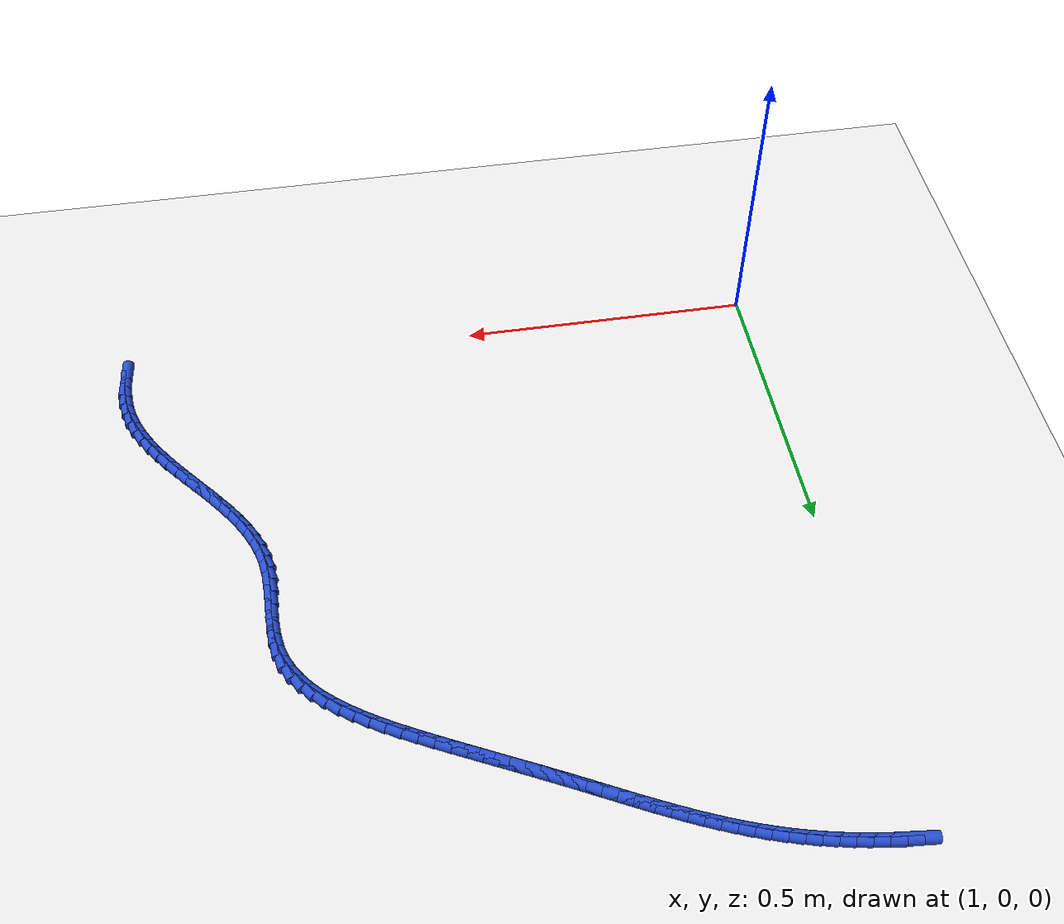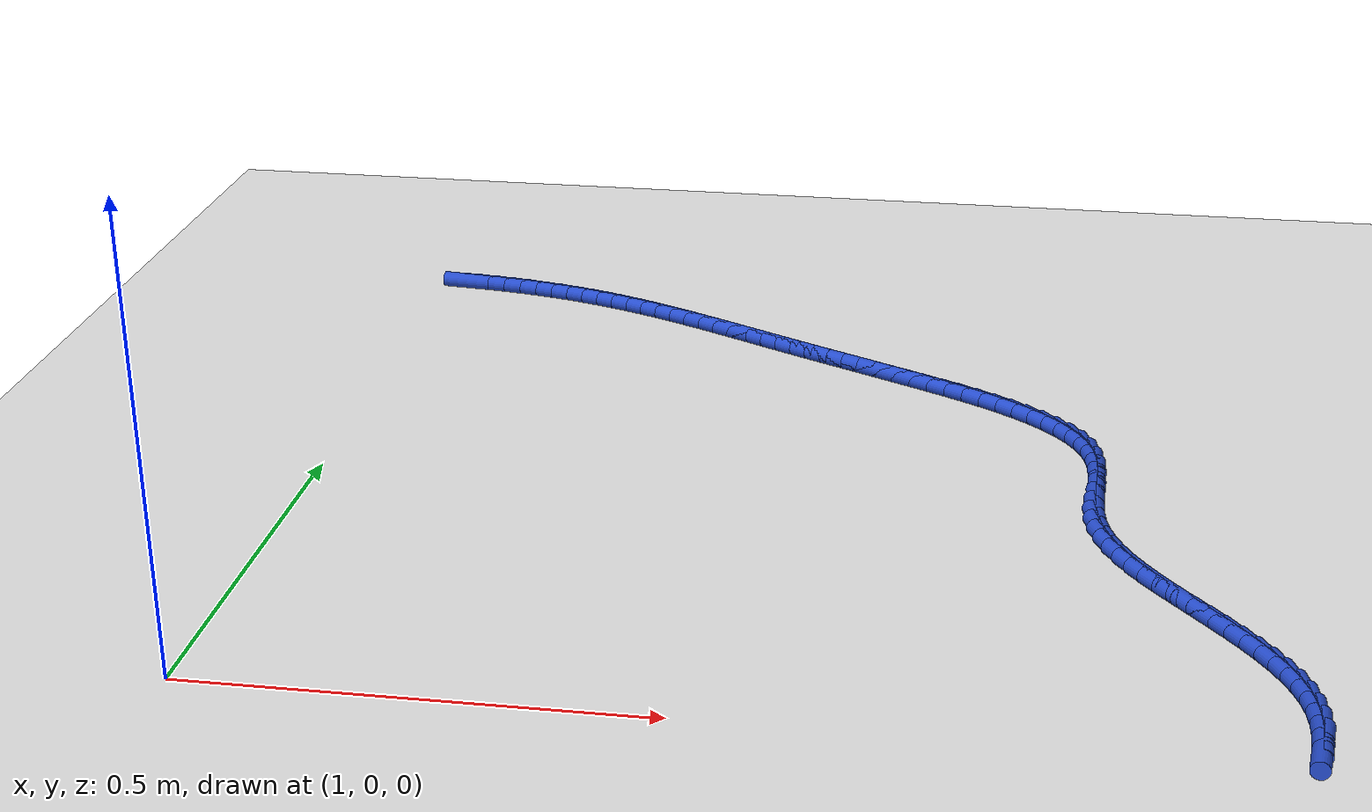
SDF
<sdf version="1.6">
 <world name="default">
  <model name="ground_plane">
   <static>1</static>
   <link name="link">
    <collision name="collision">
     <geometry><plane><normal>0 0 1</normal><size>100 100</size></plane></geometry>
     <surface><friction><ode><mu>100</mu><mu2>50</mu2></ode></friction></surface>
    </collision>
    <visual name="visual">
     <cast_shadows>0</cast_shadows>
     <geometry><plane><normal>0 0 1</normal><size>100 100</size></plane></geometry>
     <material>
      <script><uri>file://media/materials/scripts/gazebo.material</uri><name>Gazebo/WhiteGlow</name></script>
     </material>
    </visual>
   </link>
  </model>
  <model name="line">
   <link name="link_69">
    <pose>1.030614867854801 1.0853525549357117 0.01 0 1.57 -0.10308039634264075</pose>
    <collision name="collision">
     <geometry><cylinder><radius>0.01</radius><length>0.08</length></cylinder></geometry>
    </collision>
    <visual name="visual">
     <material>
      <script><name>Gazebo/Blue</name><uri>file://media/materials/scripts/gazebo.material</uri></script>
     </material>
     <geometry><cylinder><radius>0.01</radius><length>0.08</length></cylinder></geometry>
    </visual>
   </link>
   <link name="link_70">
    <pose>1.055228164593601 1.0828063819798337 0.01 0 1.57 -0.13067224404088587</pose>
    <collision name="collision">
     <geometry><cylinder><radius>0.01</radius><length>0.08</length></cylinder></geometry>
    </collision>
    <visual name="visual">
     <material>
      <script><name>Gazebo/Blue</name><uri>file://media/materials/scripts/gazebo.material</uri></script>
     </material>
     <geometry><cylinder><radius>0.01</radius><length>0.08</length></cylinder></geometry>
    </visual>
   </link>
   <link name="link_71">
    <pose>1.0794861066105343 1.0796183762552884 0.01 0 1.57 -0.1573822876860002</pose>
    <collision name="collision">
     <geometry><cylinder><radius>0.01</radius><length>0.08</length></cylinder></geometry>
    </collision>
    <visual name="visual">
     <material>
      <script><name>Gazebo/Blue</name><uri>file://media/materials/scripts/gazebo.material</uri></script>
     </material>
     <geometry><cylinder><radius>0.01</radius><length>0.08</length></cylinder></geometry>
    </visual>
   </link>
   <link name="link_72">
    <pose>1.1033642201056064 1.0758290461378075 0.01 0 1.57 -0.1848736981832675</pose>
    <collision name="collision">
     <geometry><cylinder><radius>0.01</radius><length>0.08</length></cylinder></geometry>
    </collision>
    <visual name="visual">
     <material>
      <script><name>Gazebo/Blue</name><uri>file://media/materials/scripts/gazebo.material</uri></script>
     </material>
     <geometry><cylinder><radius>0.01</radius><length>0.08</length></cylinder></geometry>
    </visual>
   </link>
   <link name="link_73">
    <pose>1.1268936689105709 1.0714288246489243 0.01 0 1.57 -0.2130229744525341</pose>
    <collision name="collision">
     <geometry><cylinder><radius>0.01</radius><length>0.08</length></cylinder></geometry>
    </collision>
    <visual name="visual">
     <material>
      <script><name>Gazebo/Blue</name><uri>file://media/materials/scripts/gazebo.material</uri></script>
     </material>
     <geometry><cylinder><radius>0.01</radius><length>0.08</length></cylinder></geometry>
    </visual>
   </link>
   <link name="link_74">
    <pose>1.1501058741158405 1.0664079132705104 0.01 0 1.57 -0.24168375244150964</pose>
    <collision name="collision">
     <geometry><cylinder><radius>0.01</radius><length>0.08</length></cylinder></geometry>
    </collision>
    <visual name="visual">
     <material>
      <script><name>Gazebo/Blue</name><uri>file://media/materials/scripts/gazebo.material</uri></script>
     </material>
     <geometry><cylinder><radius>0.01</radius><length>0.08</length></cylinder></geometry>
    </visual>
   </link>
   <link name="link_75">
    <pose>1.1730322568118279 1.0607565134844348 0.01 0 1.57 -0.2706976305709654</pose>
    <collision name="collision">
     <geometry><cylinder><radius>0.01</radius><length>0.08</length></cylinder></geometry>
    </collision>
    <visual name="visual">
     <material>
      <script><name>Gazebo/Blue</name><uri>file://media/materials/scripts/gazebo.material</uri></script>
     </material>
     <geometry><cylinder><radius>0.01</radius><length>0.08</length></cylinder></geometry>
    </visual>
   </link>
   <link name="link_76">
    <pose>1.1957042380889469 1.054464826772568 0.01 0 1.57 -0.2998976431099499</pose>
    <collision name="collision">
     <geometry><cylinder><radius>0.01</radius><length>0.08</length></cylinder></geometry>
    </collision>
    <visual name="visual">
     <material>
      <script><name>Gazebo/Blue</name><uri>file://media/materials/scripts/gazebo.material</uri></script>
     </material>
     <geometry><cylinder><radius>0.01</radius><length>0.08</length></cylinder></geometry>
    </visual>
   </link>
   <link name="link_77">
    <pose>1.2181532390376104 1.047523054616781 0.01 0 1.57 -0.3291122250069193</pose>
    <collision name="collision">
     <geometry><cylinder><radius>0.01</radius><length>0.08</length></cylinder></geometry>
    </collision>
    <visual name="visual">
     <material>
      <script><name>Gazebo/Blue</name><uri>file://media/materials/scripts/gazebo.material</uri></script>
     </material>
     <geometry><cylinder><radius>0.01</radius><length>0.08</length></cylinder></geometry>
    </visual>
   </link>
   <link name="link_78">
    <pose>1.2404106807482318 1.039921398498943 0.01 0 1.57 -0.3579810117943625</pose>
    <collision name="collision">
     <geometry><cylinder><radius>0.01</radius><length>0.08</length></cylinder></geometry>
    </collision>
    <visual name="visual">
     <material>
      <script><name>Gazebo/Blue</name><uri>file://media/materials/scripts/gazebo.material</uri></script>
     </material>
     <geometry><cylinder><radius>0.01</radius><length>0.08</length></cylinder></geometry>
    </visual>
   </link>
   <link name="link_79">
    <pose>1.2625063422962612 1.0316554211861397 0.01 0 1.57 -0.3845879496227477</pose>
    <collision name="collision">
     <geometry><cylinder><radius>0.01</radius><length>0.08</length></cylinder></geometry>
    </collision>
    <visual name="visual">
     <material>
      <script><name>Gazebo/Blue</name><uri>file://media/materials/scripts/gazebo.material</uri></script>
     </material>
     <geometry><cylinder><radius>0.01</radius><length>0.08</length></cylinder></geometry>
    </visual>
   </link>
   <link name="link_80">
    <pose>1.2844542313718497 1.0227721800400509 0.01 0 1.57 -0.4079715077755365</pose>
    <collision name="collision">
     <geometry><cylinder><radius>0.01</radius><length>0.08</length></cylinder></geometry>
    </collision>
    <visual name="visual">
     <material>
      <script><name>Gazebo/Blue</name><uri>file://media/materials/scripts/gazebo.material</uri></script>
     </material>
     <geometry><cylinder><radius>0.01</radius><length>0.08</length></cylinder></geometry>
    </visual>
   </link>
   <link name="link_81">
    <pose>1.3062595620316726 1.013347444205263 0.01 0 1.57 -0.42819871986005664</pose>
    <collision name="collision">
     <geometry><cylinder><radius>0.01</radius><length>0.08</length></cylinder></geometry>
    </collision>
    <visual name="visual">
     <material>
      <script><name>Gazebo/Blue</name><uri>file://media/materials/scripts/gazebo.material</uri></script>
     </material>
     <geometry><cylinder><radius>0.01</radius><length>0.08</length></cylinder></geometry>
    </visual>
   </link>
   <link name="link_82">
    <pose>1.327927452973547 1.0034572941792115 0.01 0 1.57 -0.44534429112639395</pose>
    <collision name="collision">
     <geometry><cylinder><radius>0.01</radius><length>0.08</length></cylinder></geometry>
    </collision>
    <visual name="visual">
     <material>
      <script><name>Gazebo/Blue</name><uri>file://media/materials/scripts/gazebo.material</uri></script>
     </material>
     <geometry><cylinder><radius>0.01</radius><length>0.08</length></cylinder></geometry>
    </visual>
   </link>
   <link name="link_83">
    <pose>1.3494630228952884 0.9931778104593326 0.01 0 1.57 -0.4594743329119818</pose>
    <collision name="collision">
     <geometry><cylinder><radius>0.01</radius><length>0.08</length></cylinder></geometry>
    </collision>
    <visual name="visual">
     <material>
      <script><name>Gazebo/Blue</name><uri>file://media/materials/scripts/gazebo.material</uri></script>
     </material>
     <geometry><cylinder><radius>0.01</radius><length>0.08</length></cylinder></geometry>
    </visual>
   </link>
   <link name="link_84">
    <pose>1.370871390494715 0.9825850735430625 0.01 0 1.57 -0.4706422126383588</pose>
    <collision name="collision">
     <geometry><cylinder><radius>0.01</radius><length>0.08</length></cylinder></geometry>
    </collision>
    <visual name="visual">
     <material>
      <script><name>Gazebo/Blue</name><uri>file://media/materials/scripts/gazebo.material</uri></script>
     </material>
     <geometry><cylinder><radius>0.01</radius><length>0.08</length></cylinder></geometry>
    </visual>
   </link>
   <link name="link_85">
    <pose>1.3921576744696431 0.9717551639278366 0.01 0 1.57 -0.4788853208453655</pose>
    <collision name="collision">
     <geometry><cylinder><radius>0.01</radius><length>0.08</length></cylinder></geometry>
    </collision>
    <visual name="visual">
     <material>
      <script><name>Gazebo/Blue</name><uri>file://media/materials/scripts/gazebo.material</uri></script>
     </material>
     <geometry><cylinder><radius>0.01</radius><length>0.08</length></cylinder></geometry>
    </visual>
   </link>
   <link name="link_86">
    <pose>1.4133269935178896 0.9607641621110911 0.01 0 1.57 -0.48422252969457497</pose>
    <collision name="collision">
     <geometry><cylinder><radius>0.01</radius><length>0.08</length></cylinder></geometry>
    </collision>
    <visual name="visual">
     <material>
      <script><name>Gazebo/Blue</name><uri>file://media/materials/scripts/gazebo.material</uri></script>
     </material>
     <geometry><cylinder><radius>0.01</radius><length>0.08</length></cylinder></geometry>
    </visual>
   </link>
   <link name="link_87">
    <pose>1.4343844663372718 0.9496881485902615 0.01 0 1.57 -0.486652158961907</pose>
    <collision name="collision">
     <geometry><cylinder><radius>0.01</radius><length>0.08</length></cylinder></geometry>
    </collision>
    <visual name="visual">
     <material>
      <script><name>Gazebo/Blue</name><uri>file://media/materials/scripts/gazebo.material</uri></script>
     </material>
     <geometry><cylinder><radius>0.01</radius><length>0.08</length></cylinder></geometry>
    </visual>
   </link>
   <link name="link_88">
    <pose>1.4553352116256055 0.9386032038627843 0.01 0 1.57 -0.4861503142742502</pose>
    <collision name="collision">
     <geometry><cylinder><radius>0.01</radius><length>0.08</length></cylinder></geometry>
    </collision>
    <visual name="visual">
     <material>
      <script><name>Gazebo/Blue</name><uri>file://media/materials/scripts/gazebo.material</uri></script>
     </material>
     <geometry><cylinder><radius>0.01</radius><length>0.08</length></cylinder></geometry>
    </visual>
   </link>
   <link name="link_89">
    <pose>1.4761843480807075 0.9275854084260948 0.01 0 1.57 -0.4826882785012151</pose>
    <collision name="collision">
     <geometry><cylinder><radius>0.01</radius><length>0.08</length></cylinder></geometry>
    </collision>
    <visual name="visual">
     <material>
      <script><name>Gazebo/Blue</name><uri>file://media/materials/scripts/gazebo.material</uri></script>
     </material>
     <geometry><cylinder><radius>0.01</radius><length>0.08</length></cylinder></geometry>
    </visual>
   </link>
   <link name="link_90">
    <pose>1.4969372574148807 0.9167102086545844 0.01 0 1.57 -0.47767256656146895</pose>
    <collision name="collision">
     <geometry><cylinder><radius>0.01</radius><length>0.08</length></cylinder></geometry>
    </collision>
    <visual name="visual">
     <material>
      <script><name>Gazebo/Blue</name><uri>file://media/materials/scripts/gazebo.material</uri></script>
     </material>
     <geometry><cylinder><radius>0.01</radius><length>0.08</length></cylinder></geometry>
    </visual>
   </link>
   <link name="link_91">
    <pose>1.517619754757472 0.9060037863330029 0.01 0 1.57 -0.47361228682369366</pose>
    <collision name="collision">
     <geometry><cylinder><radius>0.01</radius><length>0.08</length></cylinder></geometry>
    </collision>
    <visual name="visual">
     <material>
      <script><name>Gazebo/Blue</name><uri>file://media/materials/scripts/gazebo.material</uri></script>
     </material>
     <geometry><cylinder><radius>0.01</radius><length>0.08</length></cylinder></geometry>
    </visual>
   </link>
   <link name="link_92">
    <pose>1.5382923388086174 0.8954087018000148 0.01 0 1.57 -0.47080228725001194</pose>
    <collision name="collision">
     <geometry><cylinder><radius>0.01</radius><length>0.08</length></cylinder></geometry>
    </collision>
    <visual name="visual">
     <material>
      <script><name>Gazebo/Blue</name><uri>file://media/materials/scripts/gazebo.material</uri></script>
     </material>
     <geometry><cylinder><radius>0.01</radius><length>0.08</length></cylinder></geometry>
    </visual>
   </link>
   <link name="link_93">
    <pose>1.5590188738765731 0.8848594009755051 0.01 0 1.57 -0.46926952690748897</pose>
    <collision name="collision">
     <geometry><cylinder><radius>0.01</radius><length>0.08</length></cylinder></geometry>
    </collision>
    <visual name="visual">
     <material>
      <script><name>Gazebo/Blue</name><uri>file://media/materials/scripts/gazebo.material</uri></script>
     </material>
     <geometry><cylinder><radius>0.01</radius><length>0.08</length></cylinder></geometry>
    </visual>
   </link>
   <link name="link_94">
    <pose>1.5798632242695962 0.8742903297793588 0.01 0 1.57 -0.46901238932947853</pose>
    <collision name="collision">
     <geometry><cylinder><radius>0.01</radius><length>0.08</length></cylinder></geometry>
    </collision>
    <visual name="visual">
     <material>
      <script><name>Gazebo/Blue</name><uri>file://media/materials/scripts/gazebo.material</uri></script>
     </material>
     <geometry><cylinder><radius>0.01</radius><length>0.08</length></cylinder></geometry>
    </visual>
   </link>
   <link name="link_95">
    <pose>1.6008892542959439 0.8636359341314617 0.01 0 1.57 -0.4700014957038165</pose>
    <collision name="collision">
     <geometry><cylinder><radius>0.01</radius><length>0.08</length></cylinder></geometry>
    </collision>
    <visual name="visual">
     <material>
      <script><name>Gazebo/Blue</name><uri>file://media/materials/scripts/gazebo.material</uri></script>
     </material>
     <geometry><cylinder><radius>0.01</radius><length>0.08</length></cylinder></geometry>
    </visual>
   </link>
   <link name="link_96">
    <pose>1.6221608282638722 0.8528306599516992 0.01 0 1.57 -0.4721819169983937</pose>
    <collision name="collision">
     <geometry><cylinder><radius>0.01</radius><length>0.08</length></cylinder></geometry>
    </collision>
    <visual name="visual">
     <material>
      <script><name>Gazebo/Blue</name><uri>file://media/materials/scripts/gazebo.material</uri></script>
     </material>
     <geometry><cylinder><radius>0.01</radius><length>0.08</length></cylinder></geometry>
    </visual>
   </link>
   <link name="link_97">
    <pose>1.643741810481637 0.8418089531599565 0.01 0 1.57 -0.47547654703833636</pose>
    <collision name="collision">
     <geometry><cylinder><radius>0.01</radius><length>0.08</length></cylinder></geometry>
    </collision>
    <visual name="visual">
     <material>
      <script><name>Gazebo/Blue</name><uri>file://media/materials/scripts/gazebo.material</uri></script>
     </material>
     <geometry><cylinder><radius>0.01</radius><length>0.08</length></cylinder></geometry>
    </visual>
   </link>
   <link name="link_98">
    <pose>1.665696065257497 0.8305052596761192 0.01 0 1.57 -0.4801085992604505</pose>
    <collision name="collision">
     <geometry><cylinder><radius>0.01</radius><length>0.08</length></cylinder></geometry>
    </collision>
    <visual name="visual">
     <material>
      <script><name>Gazebo/Blue</name><uri>file://media/materials/scripts/gazebo.material</uri></script>
     </material>
     <geometry><cylinder><radius>0.01</radius><length>0.08</length></cylinder></geometry>
    </visual>
   </link>
   <link name="link_99">
    <pose>1.6880708013147874 0.8188536408103001 0.01 0 1.57 -0.4898097105034367</pose>
    <collision name="collision">
     <geometry><cylinder><radius>0.01</radius><length>0.08</length></cylinder></geometry>
    </collision>
    <visual name="visual">
     <material>
      <script><name>Gazebo/Blue</name><uri>file://media/materials/scripts/gazebo.material</uri></script>
     </material>
     <geometry><cylinder><radius>0.01</radius><length>0.08</length></cylinder></geometry>
    </visual>
   </link>
   <link name="link_100">
    <pose>1.710710411162608 0.8067834744527079 0.01 0 1.57 -0.5070779755820154</pose>
    <collision name="collision">
     <geometry><cylinder><radius>0.01</radius><length>0.08</length></cylinder></geometry>
    </collision>
    <visual name="visual">
     <material>
      <script><name>Gazebo/Blue</name><uri>file://media/materials/scripts/gazebo.material</uri></script>
     </material>
     <geometry><cylinder><radius>0.01</radius><length>0.08</length></cylinder></geometry>
    </visual>
   </link>
   <link name="link_101">
    <pose>1.7333239353635435 0.7942210129544869 0.01 0 1.57 -0.5322050170920408</pose>
    <collision name="collision">
     <geometry><cylinder><radius>0.01</radius><length>0.08</length></cylinder></geometry>
    </collision>
    <visual name="visual">
     <material>
      <script><name>Gazebo/Blue</name><uri>file://media/materials/scripts/gazebo.material</uri></script>
     </material>
     <geometry><cylinder><radius>0.01</radius><length>0.08</length></cylinder></geometry>
    </visual>
   </link>
   <link name="link_102">
    <pose>1.7556179474072195 0.7810924516972796 0.01 0 1.57 -0.5657903739170047</pose>
    <collision name="collision">
     <geometry><cylinder><radius>0.01</radius><length>0.08</length></cylinder></geometry>
    </collision>
    <visual name="visual">
     <material>
      <script><name>Gazebo/Blue</name><uri>file://media/materials/scripts/gazebo.material</uri></script>
     </material>
     <geometry><cylinder><radius>0.01</radius><length>0.08</length></cylinder></geometry>
    </visual>
   </link>
   <link name="link_103">
    <pose>1.777299020783261 0.7673239860627287 0.01 0 1.57 -0.6087810697079531</pose>
    <collision name="collision">
     <geometry><cylinder><radius>0.01</radius><length>0.08</length></cylinder></geometry>
    </collision>
    <visual name="visual">
     <material>
      <script><name>Gazebo/Blue</name><uri>file://media/materials/scripts/gazebo.material</uri></script>
     </material>
     <geometry><cylinder><radius>0.01</radius><length>0.08</length></cylinder></geometry>
    </visual>
   </link>
   <link name="link_104">
    <pose>1.798073728981295 0.752841811432477 0.01 0 1.57 -0.6624661018655867</pose>
    <collision name="collision">
     <geometry><cylinder><radius>0.01</radius><length>0.08</length></cylinder></geometry>
    </collision>
    <visual name="visual">
     <material>
      <script><name>Gazebo/Blue</name><uri>file://media/materials/scripts/gazebo.material</uri></script>
     </material>
     <geometry><cylinder><radius>0.01</radius><length>0.08</length></cylinder></geometry>
    </visual>
   </link>
   <link name="link_105">
    <pose>1.8176486454909444 0.7375721231881673 0.01 0 1.57 -0.7284432359673142</pose>
    <collision name="collision">
     <geometry><cylinder><radius>0.01</radius><length>0.08</length></cylinder></geometry>
    </collision>
    <visual name="visual">
     <material>
      <script><name>Gazebo/Blue</name><uri>file://media/materials/scripts/gazebo.material</uri></script>
     </material>
     <geometry><cylinder><radius>0.01</radius><length>0.08</length></cylinder></geometry>
    </visual>
   </link>
   <link name="link_106">
    <pose>1.835730343801836 0.7214411167114424 0.01 0 1.57 -0.8085070101723594</pose>
    <collision name="collision">
     <geometry><cylinder><radius>0.01</radius><length>0.08</length></cylinder></geometry>
    </collision>
    <visual name="visual">
     <material>
      <script><name>Gazebo/Blue</name><uri>file://media/materials/scripts/gazebo.material</uri></script>
     </material>
     <geometry><cylinder><radius>0.01</radius><length>0.08</length></cylinder></geometry>
    </visual>
   </link>
   <link name="link_107">
    <pose>1.8520253974035938 0.7043749873839448 0.01 0 1.57 -0.9043773542919071</pose>
    <collision name="collision">
     <geometry><cylinder><radius>0.01</radius><length>0.08</length></cylinder></geometry>
    </collision>
    <visual name="visual">
     <material>
      <script><name>Gazebo/Blue</name><uri>file://media/materials/scripts/gazebo.material</uri></script>
     </material>
     <geometry><cylinder><radius>0.01</radius><length>0.08</length></cylinder></geometry>
    </visual>
   </link>
   <link name="link_108">
    <pose>1.8662403797858444 0.6862999305873175 0.01 0 1.57 -1.017172112886572</pose>
    <collision name="collision">
     <geometry><cylinder><radius>0.01</radius><length>0.08</length></cylinder></geometry>
    </collision>
    <visual name="visual">
     <material>
      <script><name>Gazebo/Blue</name><uri>file://media/materials/scripts/gazebo.material</uri></script>
     </material>
     <geometry><cylinder><radius>0.01</radius><length>0.08</length></cylinder></geometry>
    </visual>
   </link>
   <link name="link_109">
    <pose>1.8780818644382127 0.6671421417032027 0.01 0 1.57 -1.1465876552561638</pose>
    <collision name="collision">
     <geometry><cylinder><radius>0.01</radius><length>0.08</length></cylinder></geometry>
    </collision>
    <visual name="visual">
     <material>
      <script><name>Gazebo/Blue</name><uri>file://media/materials/scripts/gazebo.material</uri></script>
     </material>
     <geometry><cylinder><radius>0.01</radius><length>0.08</length></cylinder></geometry>
    </visual>
   </link>
   <link name="link_110">
    <pose>1.8872564248503232 0.6468278161132437 0.01 0 1.57 -1.2894282790665088</pose>
    <collision name="collision">
     <geometry><cylinder><radius>0.01</radius><length>0.08</length></cylinder></geometry>
    </collision>
    <visual name="visual">
     <material>
      <script><name>Gazebo/Blue</name><uri>file://media/materials/scripts/gazebo.material</uri></script>
     </material>
     <geometry><cylinder><radius>0.01</radius><length>0.08</length></cylinder></geometry>
    </visual>
   </link>
   <link name="link_111">
    <pose>1.893482434635169 0.6252872187120085 0.01 0 1.57 -1.4202013386655299</pose>
    <collision name="collision">
     <geometry><cylinder><radius>0.01</radius><length>0.08</length></cylinder></geometry>
    </collision>
    <visual name="visual">
     <material>
      <script><name>Gazebo/Blue</name><uri>file://media/materials/scripts/gazebo.material</uri></script>
     </material>
     <geometry><cylinder><radius>0.01</radius><length>0.08</length></cylinder></geometry>
    </visual>
   </link>
   <link name="link_112">
    <pose>1.8969244018434932 0.6026044729431993 0.01 0 1.57 -1.5116219188461573</pose>
    <collision name="collision">
     <geometry><cylinder><radius>0.01</radius><length>0.08</length></cylinder></geometry>
    </collision>
    <visual name="visual">
     <material>
      <script><name>Gazebo/Blue</name><uri>file://media/materials/scripts/gazebo.material</uri></script>
     </material>
     <geometry><cylinder><radius>0.01</radius><length>0.08</length></cylinder></geometry>
    </visual>
   </link>
   <link name="link_113">
    <pose>1.8983191958189813 0.5790610927020531 0.01 0 1.57 -1.565734980175591</pose>
    <collision name="collision">
     <geometry><cylinder><radius>0.01</radius><length>0.08</length></cylinder></geometry>
    </collision>
    <visual name="visual">
     <material>
      <script><name>Gazebo/Blue</name><uri>file://media/materials/scripts/gazebo.material</uri></script>
     </material>
     <geometry><cylinder><radius>0.01</radius><length>0.08</length></cylinder></geometry>
    </visual>
   </link>
   <link name="link_114">
    <pose>1.8984412236764558 0.5549515375488724 0.01 0 1.57 1.5553622966730036</pose>
    <collision name="collision">
     <geometry><cylinder><radius>0.01</radius><length>0.08</length></cylinder></geometry>
    </collision>
    <visual name="visual">
     <material>
      <script><name>Gazebo/Blue</name><uri>file://media/materials/scripts/gazebo.material</uri></script>
     </material>
     <geometry><cylinder><radius>0.01</radius><length>0.08</length></cylinder></geometry>
    </visual>
   </link>
   <link name="link_115">
    <pose>1.8980648925307406 0.5305702670439589 0.01 0 1.57 1.5666793918748065</pose>
    <collision name="collision">
     <geometry><cylinder><radius>0.01</radius><length>0.08</length></cylinder></geometry>
    </collision>
    <visual name="visual">
     <material>
      <script><name>Gazebo/Blue</name><uri>file://media/materials/scripts/gazebo.material</uri></script>
     </material>
     <geometry><cylinder><radius>0.01</radius><length>0.08</length></cylinder></geometry>
    </visual>
   </link>
   <link name="link_116">
    <pose>1.8979646094966578 0.5062117407476143 0.01 0 1.57 -1.5312944265313155</pose>
    <collision name="collision">
     <geometry><cylinder><radius>0.01</radius><length>0.08</length></cylinder></geometry>
    </collision>
    <visual name="visual">
     <material>
      <script><name>Gazebo/Blue</name><uri>file://media/materials/scripts/gazebo.material</uri></script>
     </material>
     <geometry><cylinder><radius>0.01</radius><length>0.08</length></cylinder></geometry>
    </visual>
   </link>
   <link name="link_117">
    <pose>1.898914781689031 0.48217041822014023 0.01 0 1.57 -1.4529044575025558</pose>
    <collision name="collision">
     <geometry><cylinder><radius>0.01</radius><length>0.08</length></cylinder></geometry>
    </collision>
    <visual name="visual">
     <material>
      <script><name>Gazebo/Blue</name><uri>file://media/materials/scripts/gazebo.material</uri></script>
     </material>
     <geometry><cylinder><radius>0.01</radius><length>0.08</length></cylinder></geometry>
    </visual>
   </link>
   <link name="link_118">
    <pose>1.9016898162034195 0.45874075901449207 0.01 0 1.57 -1.3447798973391785</pose>
    <collision name="collision">
     <geometry><cylinder><radius>0.01</radius><length>0.08</length></cylinder></geometry>
    </collision>
    <visual name="visual">
     <material>
      <script><name>Gazebo/Blue</name><uri>file://media/materials/scripts/gazebo.material</uri></script>
     </material>
     <geometry><cylinder><radius>0.01</radius><length>0.08</length></cylinder></geometry>
    </visual>
   </link>
   <link name="link_119">
    <pose>1.9068847299863214 0.4361488037557895 0.01 0 1.57 -1.2393147831443994</pose>
    <collision name="collision">
     <geometry><cylinder><radius>0.01</radius><length>0.08</length></cylinder></geometry>
    </collision>
    <visual name="visual">
     <material>
      <script><name>Gazebo/Blue</name><uri>file://media/materials/scripts/gazebo.material</uri></script>
     </material>
     <geometry><cylinder><radius>0.01</radius><length>0.08</length></cylinder></geometry>
    </visual>
   </link>
   <link name="link_120">
    <pose>1.9143871867145115 0.41435081040511945 0.01 0 1.57 -1.1470792508188514</pose>
    <collision name="collision">
     <geometry><cylinder><radius>0.01</radius><length>0.08</length></cylinder></geometry>
    </collision>
    <visual name="visual">
     <material>
      <script><name>Gazebo/Blue</name><uri>file://media/materials/scripts/gazebo.material</uri></script>
     </material>
     <geometry><cylinder><radius>0.01</radius><length>0.08</length></cylinder></geometry>
    </visual>
   </link>
   <link name="link_121">
    <pose>1.9239105273823571 0.39323655071409724 0.01 0 1.57 -1.0694437863486945</pose>
    <collision name="collision">
     <geometry><cylinder><radius>0.01</radius><length>0.08</length></cylinder></geometry>
    </collision>
    <visual name="visual">
     <material>
      <script><name>Gazebo/Blue</name><uri>file://media/materials/scripts/gazebo.material</uri></script>
     </material>
     <geometry><cylinder><radius>0.01</radius><length>0.08</length></cylinder></geometry>
    </visual>
   </link>
   <link name="link_122">
    <pose>1.9351680929842265 0.37269579643433814 0.01 0 1.57 -1.006603976001706</pose>
    <collision name="collision">
     <geometry><cylinder><radius>0.01</radius><length>0.08</length></cylinder></geometry>
    </collision>
    <visual name="visual">
     <material>
      <script><name>Gazebo/Blue</name><uri>file://media/materials/scripts/gazebo.material</uri></script>
     </material>
     <geometry><cylinder><radius>0.01</radius><length>0.08</length></cylinder></geometry>
    </visual>
   </link>
   <link name="link_123">
    <pose>1.9478732245144867 0.35261831931745813 0.01 0 1.57 -0.958067735134313</pose>
    <collision name="collision">
     <geometry><cylinder><radius>0.01</radius><length>0.08</length></cylinder></geometry>
    </collision>
    <visual name="visual">
     <material>
      <script><name>Gazebo/Blue</name><uri>file://media/materials/scripts/gazebo.material</uri></script>
     </material>
     <geometry><cylinder><radius>0.01</radius><length>0.08</length></cylinder></geometry>
    </visual>
   </link>
   <link name="link_124">
    <pose>1.9617392629675052 0.33289389111507217 0.01 0 1.57 -0.9230681917637624</pose>
    <collision name="collision">
     <geometry><cylinder><radius>0.01</radius><length>0.08</length></cylinder></geometry>
    </collision>
    <visual name="visual">
     <material>
      <script><name>Gazebo/Blue</name><uri>file://media/materials/scripts/gazebo.material</uri></script>
     </material>
     <geometry><cylinder><radius>0.01</radius><length>0.08</length></cylinder></geometry>
    </visual>
   </link>
   <link name="link_125">
    <pose>1.9764795493376488 0.3134122835787958 0.01 0 1.57 -0.9008427733714617</pose>
    <collision name="collision">
     <geometry><cylinder><radius>0.01</radius><length>0.08</length></cylinder></geometry>
    </collision>
    <visual name="visual">
     <material>
      <script><name>Gazebo/Blue</name><uri>file://media/materials/scripts/gazebo.material</uri></script>
     </material>
     <geometry><cylinder><radius>0.01</radius><length>0.08</length></cylinder></geometry>
    </visual>
   </link>
   <link name="link_126">
    <pose>1.9918074246192867 0.29406326846024416 0.01 0 1.57 -0.8907935408153541</pose>
    <collision name="collision">
     <geometry><cylinder><radius>0.01</radius><length>0.08</length></cylinder></geometry>
    </collision>
    <visual name="visual">
     <material>
      <script><name>Gazebo/Blue</name><uri>file://media/materials/scripts/gazebo.material</uri></script>
     </material>
     <geometry><cylinder><radius>0.01</radius><length>0.08</length></cylinder></geometry>
    </visual>
   </link>
   <link name="link_127">
    <pose>2.007436229806785 0.27473661751103323 0.01 0 1.57 -0.8925643984315844</pose>
    <collision name="collision">
     <geometry><cylinder><radius>0.01</radius><length>0.08</length></cylinder></geometry>
    </collision>
    <visual name="visual">
     <material>
      <script><name>Gazebo/Blue</name><uri>file://media/materials/scripts/gazebo.material</uri></script>
     </material>
     <geometry><cylinder><radius>0.01</radius><length>0.08</length></cylinder></geometry>
    </visual>
   </link>
   <link name="link_128">
    <pose>2.023079305894511 0.25532210248277815 0.01 0 1.57 -0.906021831628276</pose>
    <collision name="collision">
     <geometry><cylinder><radius>0.01</radius><length>0.08</length></cylinder></geometry>
    </collision>
    <visual name="visual">
     <material>
      <script><name>Gazebo/Blue</name><uri>file://media/materials/scripts/gazebo.material</uri></script>
     </material>
     <geometry><cylinder><radius>0.01</radius><length>0.08</length></cylinder></geometry>
    </visual>
   </link>
   <link name="link_129">
    <pose>2.0384492505217744 0.23571217314485965 0.01 0 1.57 -0.9306253629071842</pose>
    <collision name="collision">
     <geometry><cylinder><radius>0.01</radius><length>0.08</length></cylinder></geometry>
    </collision>
    <visual name="visual">
     <material>
      <script><name>Gazebo/Blue</name><uri>file://media/materials/scripts/gazebo.material</uri></script>
     </material>
     <geometry><cylinder><radius>0.01</radius><length>0.08</length></cylinder></geometry>
    </visual>
   </link>
   <link name="link_130">
    <pose>2.053245648717578 0.21584615861605438 0.01 0 1.57 -0.9663833271213049</pose>
    <collision name="collision">
     <geometry><cylinder><radius>0.01</radius><length>0.08</length></cylinder></geometry>
    </collision>
    <visual name="visual">
     <material>
      <script><name>Gazebo/Blue</name><uri>file://media/materials/scripts/gazebo.material</uri></script>
     </material>
     <geometry><cylinder><radius>0.01</radius><length>0.08</length></cylinder></geometry>
    </visual>
   </link>
   <link name="link_131">
    <pose>2.067157004288821 0.1957033093276798 0.01 0 1.57 -1.014311144934866</pose>
    <collision name="collision">
     <geometry><cylinder><radius>0.01</radius><length>0.08</length></cylinder></geometry>
    </collision>
    <visual name="visual">
     <material>
      <script><name>Gazebo/Blue</name><uri>file://media/materials/scripts/gazebo.material</uri></script>
     </material>
     <geometry><cylinder><radius>0.01</radius><length>0.08</length></cylinder></geometry>
    </visual>
   </link>
   <link name="link_132">
    <pose>2.0798714670934584 0.17526415085076913 0.01 0 1.57 -1.0757357646901</pose>
    <collision name="collision">
     <geometry><cylinder><radius>0.01</radius><length>0.08</length></cylinder></geometry>
    </collision>
    <visual name="visual">
     <material>
      <script><name>Gazebo/Blue</name><uri>file://media/materials/scripts/gazebo.material</uri></script>
     </material>
     <geometry><cylinder><radius>0.01</radius><length>0.08</length></cylinder></geometry>
    </visual>
   </link>
   <link name="link_133">
    <pose>2.091077186989444 0.1545092087563549 0.01 0 1.57 -1.1521086588966507</pose>
    <collision name="collision">
     <geometry><cylinder><radius>0.01</radius><length>0.08</length></cylinder></geometry>
    </collision>
    <visual name="visual">
     <material>
      <script><name>Gazebo/Blue</name><uri>file://media/materials/scripts/gazebo.material</uri></script>
     </material>
     <geometry><cylinder><radius>0.01</radius><length>0.08</length></cylinder></geometry>
    </visual>
   </link>
   <link name="link_134">
    <pose>2.100462313834732 0.13341900861546993 0.01 0 1.57 -1.2446717186150003</pose>
    <collision name="collision">
     <geometry><cylinder><radius>0.01</radius><length>0.08</length></cylinder></geometry>
    </collision>
    <visual name="visual">
     <material>
      <script><name>Gazebo/Blue</name><uri>file://media/materials/scripts/gazebo.material</uri></script>
     </material>
     <geometry><cylinder><radius>0.01</radius><length>0.08</length></cylinder></geometry>
    </visual>
   </link>
   <link name="link_135">
    <pose>2.1077150010882777 0.11197407635715072 0.01 0 1.57 -1.3496630114945753</pose>
    <collision name="collision">
     <geometry><cylinder><radius>0.01</radius><length>0.08</length></cylinder></geometry>
    </collision>
    <visual name="visual">
     <material>
      <script><name>Gazebo/Blue</name><uri>file://media/materials/scripts/gazebo.material</uri></script>
     </material>
     <geometry><cylinder><radius>0.01</radius><length>0.08</length></cylinder></geometry>
    </visual>
   </link>
   <link name="link_136">
    <pose>2.1126180401308323 0.09016434661948304 0.01 0 1.57 -1.4505143970919925</pose>
    <collision name="collision">
     <geometry><cylinder><radius>0.01</radius><length>0.08</length></cylinder></geometry>
    </collision>
    <visual name="visual">
     <material>
      <script><name>Gazebo/Blue</name><uri>file://media/materials/scripts/gazebo.material</uri></script>
     </material>
     <geometry><cylinder><radius>0.01</radius><length>0.08</length></cylinder></geometry>
    </visual>
   </link>
   <link name="link_137">
    <pose>2.1152952909039655 0.0680136623808169 0.01 0 1.57 -1.5417695056665963</pose>
    <collision name="collision">
     <geometry><cylinder><radius>0.01</radius><length>0.08</length></cylinder></geometry>
    </collision>
    <visual name="visual">
     <material>
      <script><name>Gazebo/Blue</name><uri>file://media/materials/scripts/gazebo.material</uri></script>
     </material>
     <geometry><cylinder><radius>0.01</radius><length>0.08</length></cylinder></geometry>
    </visual>
   </link>
   <link name="link_138">
    <pose>2.1159474211042655 0.04555350268975749 0.01 0 1.57 1.5192844285700975</pose>
    <collision name="collision">
     <geometry><cylinder><radius>0.01</radius><length>0.08</length></cylinder></geometry>
    </collision>
    <visual name="visual">
     <material>
      <script><name>Gazebo/Blue</name><uri>file://media/materials/scripts/gazebo.material</uri></script>
     </material>
     <geometry><cylinder><radius>0.01</radius><length>0.08</length></cylinder></geometry>
    </visual>
   </link>
   <link name="link_139">
    <pose>2.114775098428319 0.022815346594909986 0.01 0 1.57 1.4497401849848786</pose>
    <collision name="collision">
     <geometry><cylinder><radius>0.01</radius><length>0.08</length></cylinder></geometry>
    </collision>
    <visual name="visual">
     <material>
      <script><name>Gazebo/Blue</name><uri>file://media/materials/scripts/gazebo.material</uri></script>
     </material>
     <geometry><cylinder><radius>0.01</radius><length>0.08</length></cylinder></geometry>
    </visual>
   </link>
  </model>
 </world>
</sdf>
